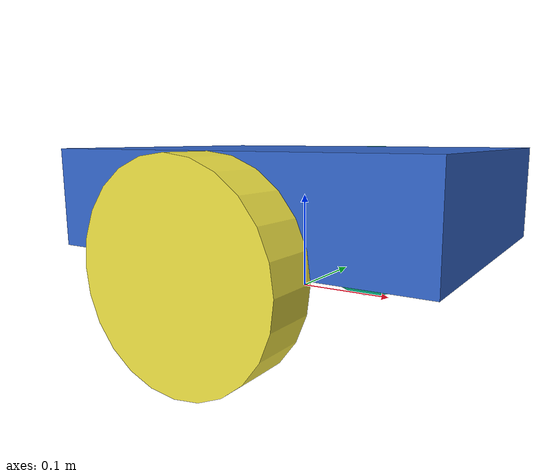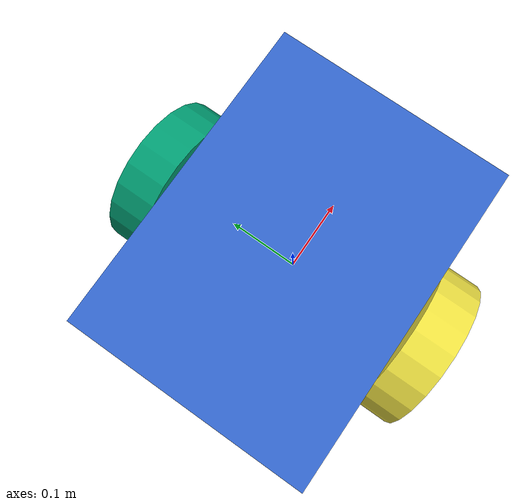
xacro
<?xml version="1.0"?>
<robot name="btraj_robot" xmlns:xacro="http://www.ros.org/wiki/xacro">

  <link name="base_footprint"/>

  <joint name="base_joint" type="fixed">
    <parent link="base_footprint"/>
    <child  link="base_link"/>
    <origin xyz="0 0 0.1" rpy="0 0 0"/>
  </joint>

  <link name="base_link">
    <visual>
      <geometry><box size="0.4 0.3 0.1"/></geometry>
      <material name="blue"><color rgba="0.2 0.4 0.8 1.0"/></material>
    </visual>
    <collision>
      <geometry><box size="0.4 0.3 0.1"/></geometry>
    </collision>
    <inertial>
      <mass value="5.0"/>
      <inertia ixx="0.1" ixy="0" ixz="0" iyy="0.1" iyz="0" izz="0.1"/>
    </inertial>
  </link>

  <joint name="left_wheel_joint" type="continuous">
    <parent link="base_link"/>
    <child  link="left_wheel"/>
    <origin xyz="0 0.18 -0.05" rpy="-1.5708 0 0"/>
    <axis xyz="0 0 1"/>
  </joint>
  <link name="left_wheel">
    <visual>
      <geometry><cylinder radius="0.1" length="0.05"/></geometry>
    </visual>
    <collision>
      <geometry><cylinder radius="0.1" length="0.05"/></geometry>
    </collision>
    <inertial>
      <mass value="0.5"/>
      <inertia ixx="0.01" ixy="0" ixz="0" iyy="0.01" iyz="0" izz="0.01"/>
    </inertial>
  </link>

  <joint name="right_wheel_joint" type="continuous">
    <parent link="base_link"/>
    <child  link="right_wheel"/>
    <origin xyz="0 -0.18 -0.05" rpy="-1.5708 0 0"/>
    <axis xyz="0 0 1"/>
  </joint>
  <link name="right_wheel">
    <visual>
      <geometry><cylinder radius="0.1" length="0.05"/></geometry>
    </visual>
    <collision>
      <geometry><cylinder radius="0.1" length="0.05"/></geometry>
    </collision>
    <inertial>
      <mass value="0.5"/>
      <inertia ixx="0.01" ixy="0" ixz="0" iyy="0.01" iyz="0" izz="0.01"/>
    </inertial>
  </link>

  <gazebo>
    <plugin name="diff_drive" filename="libgazebo_ros_diff_drive.so">
      <left_joint>left_wheel_joint</left_joint>
      <right_joint>right_wheel_joint</right_joint>
      <wheel_separation>0.36</wheel_separation>
      <wheel_diameter>0.2</wheel_diameter>
      <max_wheel_torque>20</max_wheel_torque>
      <command_topic>cmd_vel</command_topic>
      <odometry_topic>odom</odometry_topic>
      <odometry_frame>odom</odometry_frame>
      <robot_base_frame>base_footprint</robot_base_frame>
      <publish_odom>true</publish_odom>
      <publish_odom_tf>true</publish_odom_tf>
    </plugin>
  </gazebo>

</robot>
